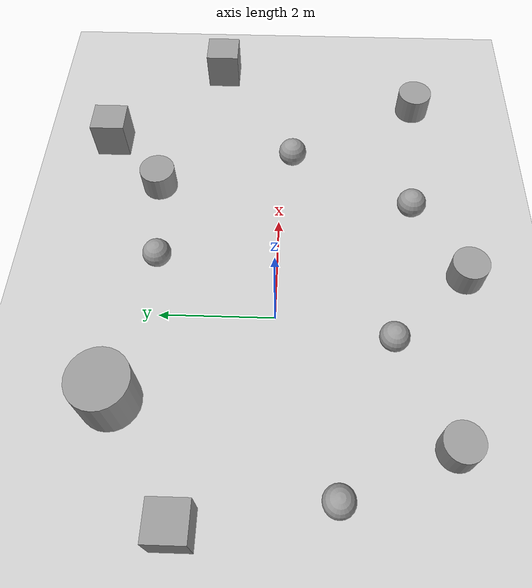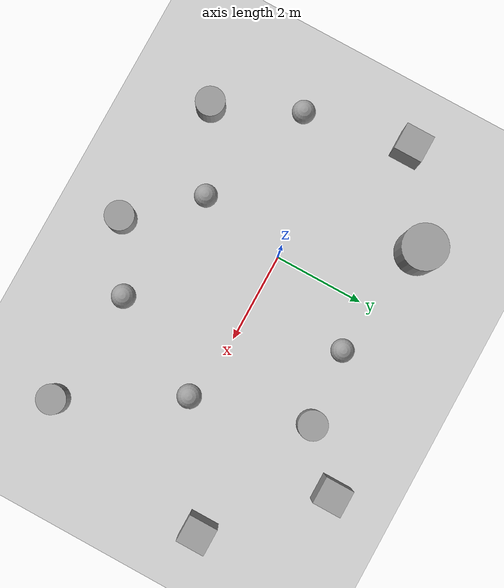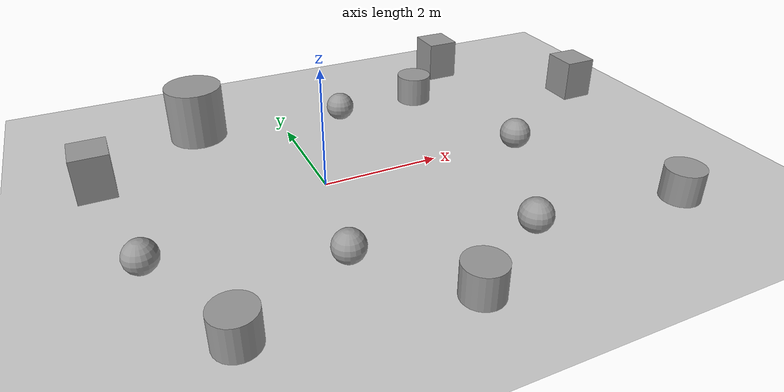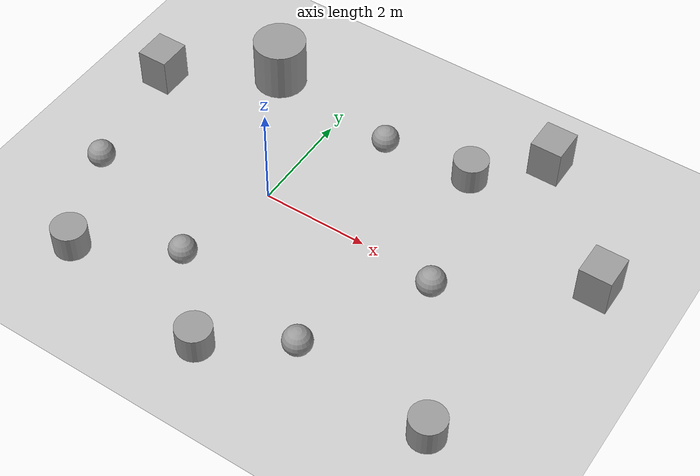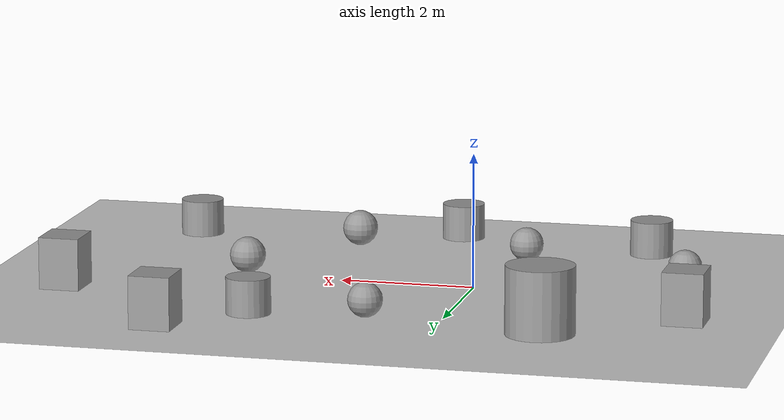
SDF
<sdf version="1.7">
 <world name="default">
  <light name="sun" type="directional">
   <pose>0 0 10 0 -0 0</pose>
   <diffuse>0.8 0.8 0.8 1</diffuse>
   <specular>0.2 0.2 0.2 1</specular>
   <attenuation>
    <range>1000</range>
    <constant>0.9</constant>
    <linear>0.01</linear>
    <quadratic>0.001</quadratic>
   </attenuation>
   <direction>-0.5 0.1 -0.9</direction>
   <spot><inner_angle>0</inner_angle><outer_angle>0</outer_angle><falloff>0</falloff></spot>
  </light>
  <model name="ground_plane">
   <static>1</static>
   <link name="link">
    <collision name="collision">
     <geometry><plane><normal>0 0 1</normal><size>100 100</size></plane></geometry>
     <surface>
      <contact><collide_bitmask>65535</collide_bitmask></contact>
      <friction><ode><mu>100</mu><mu2>50</mu2></ode></friction>
     </surface>
    </collision>
    <visual name="visual">
     <cast_shadows>0</cast_shadows>
     <geometry><plane><normal>0 0 1</normal><size>100 100</size></plane></geometry>
     <material>
      <script><uri>file://media/materials/scripts/gazebo.material</uri><name>Gazebo/Grey</name></script>
     </material>
    </visual>
   </link>
  </model>
  <gravity>0 0 -9.8</gravity>
  <magnetic_field>6e-06 2.3e-05 -4.2e-05</magnetic_field>
  <atmosphere type="adiabatic"/>
  <physics type="ode">
   <max_step_size>0.001</max_step_size>
   <real_time_factor>1</real_time_factor>
   <real_time_update_rate>1000</real_time_update_rate>
  </physics>
  <scene><ambient>0.4 0.4 0.4 1</ambient><background>0.7 0.7 0.7 1</background><shadows>1</shadows></scene>
  <spherical_coordinates>
   <surface_model>EARTH_WGS84</surface_model>
   <latitude_deg>0</latitude_deg>
   <longitude_deg>0</longitude_deg>
   <elevation>0</elevation>
   <heading_deg>0</heading_deg>
  </spherical_coordinates>
  <model name="unit_box">
   <pose>3.86014 3.36629 0.387614 -2e-06 -8e-06 -1.4e-05</pose>
   <link name="link">
    <inertial>
     <mass>1</mass>
     <inertia>
      <ixx>0.166667</ixx>
      <ixy>0</ixy>
      <ixz>0</ixz>
      <iyy>0.166667</iyy>
      <iyz>0</iyz>
      <izz>0.166667</izz>
     </inertia>
    </inertial>
    <collision name="collision"><geometry><box><size>0.60204 0.64042 0.775231</size></box></geometry></collision>
    <visual name="visual">
     <geometry><box><size>0.60204 0.64042 0.775231</size></box></geometry>
     <material>
      <script><name>Gazebo/Grey</name><uri>file://media/materials/scripts/gazebo.material</uri></script>
     </material>
    </visual>
   </link>
  </model>
  <model name="unit_sphere">
   <pose>2.32915 -2.46169 0.267119 0 -0 0</pose>
   <link name="link">
    <inertial>
     <mass>1</mass>
     <inertia><ixx>0.1</ixx><ixy>0</ixy><ixz>0</ixz><iyy>0.1</iyy><iyz>0</iyz><izz>0.1</izz></inertia>
    </inertial>
    <collision name="collision"><geometry><sphere><radius>0.267119</radius></sphere></geometry></collision>
    <visual name="visual">
     <geometry><sphere><radius>0.267119</radius></sphere></geometry>
     <material>
      <script><name>Gazebo/Grey</name><uri>file://media/materials/scripts/gazebo.material</uri></script>
     </material>
    </visual>
   </link>
  </model>
  <model name="unit_cylinder">
   <pose>-1.52357 2.55961 0.5 0 -0 0</pose>
   <link name="link">
    <inertial>
     <mass>1</mass>
     <inertia><ixx>0.145833</ixx><ixy>0</ixy><ixz>0</ixz><iyy>0.145833</iyy><iyz>0</iyz><izz>0.125</izz></inertia>
    </inertial>
    <collision name="collision">
     <geometry><cylinder><radius>0.5</radius><length>1</length></cylinder></geometry>
    </collision>
    <visual name="visual">
     <geometry><cylinder><radius>0.5</radius><length>1</length></cylinder></geometry>
     <material>
      <script><name>Gazebo/Grey</name><uri>file://media/materials/scripts/gazebo.material</uri></script>
     </material>
    </visual>
   </link>
  </model>
  <model name="unit_sphere_clone">
   <pose>-0.388565 -1.97262 0.254862 0 -0 0</pose>
   <link name="link">
    <inertial>
     <mass>1</mass>
     <inertia><ixx>0.1</ixx><ixy>0</ixy><ixz>0</ixz><iyy>0.1</iyy><iyz>0</iyz><izz>0.1</izz></inertia>
    </inertial>
    <collision name="collision"><geometry><sphere><radius>0.254862</radius></sphere></geometry></collision>
    <visual name="visual">
     <geometry><sphere><radius>0.254862</radius></sphere></geometry>
     <material>
      <script><name>Gazebo/Grey</name><uri>file://media/materials/scripts/gazebo.material</uri></script>
     </material>
    </visual>
   </link>
  </model>
  <model name="unit_sphere_clone_0">
   <pose>3.50467 -0.222398 0.267119 0 -0 0</pose>
   <link name="link">
    <inertial>
     <mass>1</mass>
     <inertia><ixx>0.1</ixx><ixy>0</ixy><ixz>0</ixz><iyy>0.1</iyy><iyz>0</iyz><izz>0.1</izz></inertia>
    </inertial>
    <collision name="collision"><geometry><sphere><radius>0.267119</radius></sphere></geometry></collision>
    <visual name="visual">
     <geometry><sphere><radius>0.267119</radius></sphere></geometry>
     <material>
      <script><name>Gazebo/Grey</name><uri>file://media/materials/scripts/gazebo.material</uri></script>
     </material>
    </visual>
   </link>
  </model>
  <model name="unit_sphere_clone_clone">
   <pose>-2.97506 -1.01157 0.254862 0 -0 0</pose>
   <link name="link">
    <inertial>
     <mass>1</mass>
     <inertia><ixx>0.1</ixx><ixy>0</ixy><ixz>0</ixz><iyy>0.1</iyy><iyz>0</iyz><izz>0.1</izz></inertia>
    </inertial>
    <collision name="collision"><geometry><sphere><radius>0.254862</radius></sphere></geometry></collision>
    <visual name="visual">
     <geometry><sphere><radius>0.254862</radius></sphere></geometry>
     <material>
      <script><name>Gazebo/Grey</name><uri>file://media/materials/scripts/gazebo.material</uri></script>
     </material>
    </visual>
   </link>
  </model>
  <model name="unit_sphere_clone_clone_0">
   <pose>1.10703 2.14422 0.254862 0 -0 0</pose>
   <link name="link">
    <inertial>
     <mass>1</mass>
     <inertia><ixx>0.1</ixx><ixy>0</ixy><ixz>0</ixz><iyy>0.1</iyy><iyz>0</iyz><izz>0.1</izz></inertia>
    </inertial>
    <collision name="collision"><geometry><sphere><radius>0.254862</radius></sphere></geometry></collision>
    <visual name="visual">
     <geometry><sphere><radius>0.254862</radius></sphere></geometry>
     <material>
      <script><name>Gazebo/Grey</name><uri>file://media/materials/scripts/gazebo.material</uri></script>
     </material>
    </visual>
   </link>
  </model>
  <model name="unit_cylinder_clone">
   <pose>-2.15412 -2.83279 0.271551 0 -0 0</pose>
   <link name="link">
    <inertial>
     <mass>1</mass>
     <inertia><ixx>0.145833</ixx><ixy>0</ixy><ixz>0</ixz><iyy>0.145833</iyy><iyz>0</iyz><izz>0.125</izz></inertia>
    </inertial>
    <collision name="collision">
     <geometry><cylinder><radius>0.32462</radius><length>0.5431</length></cylinder></geometry>
    </collision>
    <visual name="visual">
     <geometry><cylinder><radius>0.32462</radius><length>0.5431</length></cylinder></geometry>
     <material>
      <script><name>Gazebo/Grey</name><uri>file://media/materials/scripts/gazebo.material</uri></script>
     </material>
    </visual>
   </link>
  </model>
  <model name="unit_cylinder_clone_clone">
   <pose>0.891968 -3.32936 0.271541 0 -0 0</pose>
   <link name="link">
    <inertial>
     <mass>1</mass>
     <inertia><ixx>0.145833</ixx><ixy>0</ixy><ixz>0</ixz><iyy>0.145833</iyy><iyz>0</iyz><izz>0.125</izz></inertia>
    </inertial>
    <collision name="collision">
     <geometry><cylinder><radius>0.32462</radius><length>0.543101</length></cylinder></geometry>
    </collision>
    <visual name="visual">
     <geometry><cylinder><radius>0.32462</radius><length>0.543101</length></cylinder></geometry>
     <material>
      <script><name>Gazebo/Grey</name><uri>file://media/materials/scripts/gazebo.material</uri></script>
     </material>
    </visual>
   </link>
  </model>
  <model name="unit_cylinder_clone_clone_0">
   <pose>2.78496 2.32604 0.271541 0 -0 0</pose>
   <link name="link">
    <inertial>
     <mass>1</mass>
     <inertia><ixx>0.145833</ixx><ixy>0</ixy><ixz>0</ixz><iyy>0.145833</iyy><iyz>0</iyz><izz>0.125</izz></inertia>
    </inertial>
    <collision name="collision">
     <geometry><cylinder><radius>0.32462</radius><length>0.543101</length></cylinder></geometry>
    </collision>
    <visual name="visual">
     <geometry><cylinder><radius>0.32462</radius><length>0.543101</length></cylinder></geometry>
     <material>
      <script><name>Gazebo/Grey</name><uri>file://media/materials/scripts/gazebo.material</uri></script>
     </material>
    </visual>
   </link>
  </model>
  <model name="unit_cylinder_clone_clone_1">
   <pose>4.92893 -2.69711 0.271541 0 -0 0</pose>
   <link name="link">
    <inertial>
     <mass>1</mass>
     <inertia><ixx>0.145833</ixx><ixy>0</ixy><ixz>0</ixz><iyy>0.145833</iyy><iyz>0</iyz><izz>0.125</izz></inertia>
    </inertial>
    <collision name="collision">
     <geometry><cylinder><radius>0.32462</radius><length>0.543101</length></cylinder></geometry>
    </collision>
    <visual name="visual">
     <geometry><cylinder><radius>0.32462</radius><length>0.543101</length></cylinder></geometry>
     <material>
      <script><name>Gazebo/Grey</name><uri>file://media/materials/scripts/gazebo.material</uri></script>
     </material>
    </visual>
   </link>
  </model>
  <model name="unit_box_clone">
   <pose>-3.38361 1.35121 0.387616 0 0 -4.9e-05</pose>
   <link name="link">
    <inertial>
     <mass>1</mass>
     <inertia>
      <ixx>0.166667</ixx>
      <ixy>0</ixy>
      <ixz>0</ixz>
      <iyy>0.166667</iyy>
      <iyz>0</iyz>
      <izz>0.166667</izz>
     </inertia>
    </inertial>
    <collision name="collision"><geometry><box><size>0.60204 0.64042 0.775231</size></box></geometry></collision>
    <visual name="visual">
     <geometry><box><size>0.60204 0.64042 0.775231</size></box></geometry>
     <material>
      <script><name>Gazebo/Grey</name><uri>file://media/materials/scripts/gazebo.material</uri></script>
     </material>
    </visual>
   </link>
  </model>
  <model name="unit_box_clone_0">
   <pose>5.87472 1.29451 0.387611 1e-05 6e-06 -3.9e-05</pose>
   <link name="link">
    <inertial>
     <mass>1</mass>
     <inertia>
      <ixx>0.166667</ixx>
      <ixy>0</ixy>
      <ixz>0</ixz>
      <iyy>0.166667</iyy>
      <iyz>0</iyz>
      <izz>0.166667</izz>
     </inertia>
    </inertial>
    <collision name="collision"><geometry><box><size>0.60204 0.64042 0.775231</size></box></geometry></collision>
    <visual name="visual">
     <geometry><box><size>0.60204 0.64042 0.775231</size></box></geometry>
     <material>
      <script><name>Gazebo/Grey</name><uri>file://media/materials/scripts/gazebo.material</uri></script>
     </material>
    </visual>
   </link>
  </model>
 </world>
</sdf>
